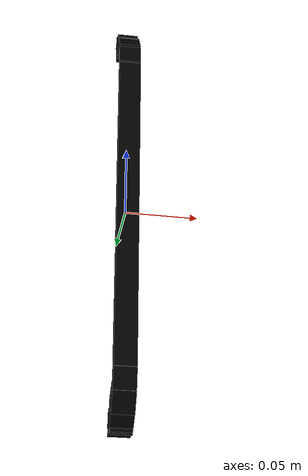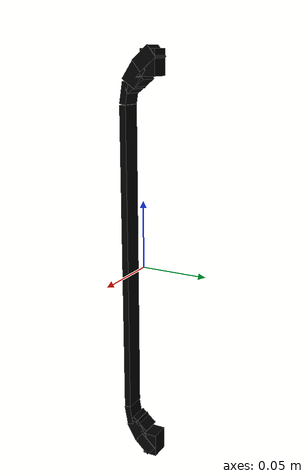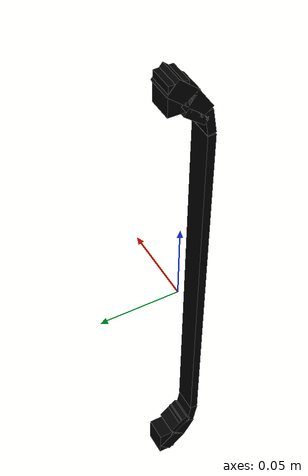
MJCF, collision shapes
<?xml version="1.0" ?>
<mujoco model="model">
    <compiler angle="radian"/>
    <asset>
        <mesh file="visuals/CabinetHandle020.obj" name="mesh"/>
        <texture file="visuals/T_BC001.png" name="tex" type="2d"/>
        <material name="mat" rgba="1 1 1 1.0" texture="tex" shininess="0.5" specular="0.3103448502657381"/>
    </asset>
    <default>
        <default class="visual">
            <geom conaffinity="0" contype="0" group="1" type="mesh"/>
        </default>
        <default class="collision">
            <geom group="0" rgba="0 0 0 0"/>
        </default>
        <default class="spawn">
            <geom group="0" rgba="0 0 0 0" contype="0" conaffinity="0"/>
            <site group="0" rgba="0 0 0 0"/>
        </default>
    </default>
    <worldbody>
        <body>
            <body name="object">
                <geom mesh="mesh" type="mesh" solimp="0.998 0.998 0.001" solref="0.001 1" density="100" friction="0.95 0.3 0.1" class="visual" material="mat"/>
                <geom class="collision" type="box" pos="2.9699571314267814e-05 -0.01141868531703949 0.0003690794110298157" size="0.007665668614208698 0.0024438342079520226 0.11673655360937119" quat="1.0 0.0 0.0 0.0"/>
                <geom class="collision" type="box" pos="2.9699571314267814e-05 -0.010137566365301609 0.1251724809408188" size="0.007665668614208698 0.0024438342079520226 0.007577591110020876" quat="0.9965392351150513 -0.08312389254570007 -1.8457213534501953e-17 -4.049495183511755e-24"/>
                <geom class="collision" type="box" pos="2.9699571314267814e-05 -0.0024454386439174414 0.13754677772521973" size="0.007665668614208698 0.005768961738795042 0.007577589713037014" quat="0.954327404499054 -0.2987627685070038 -6.633868075178094e-17 4.483387219614584e-24"/>
                <geom class="collision" type="box" pos="2.9699571314267814e-05 0.005477930884808302 0.14771072566509247" size="0.007665668614208698 0.005000699777156115 0.007577590644359589" quat="0.9044032692909241 -0.4266786575317383 -9.474170717646736e-17 3.211558058085586e-24"/>
                <geom class="collision" type="box" pos="2.9699571314267814e-05 0.008170992136001587 0.1452527791261673" size="0.007314454764127731 0.005504649132490158 0.008863759227097034" quat="0.9999792575836182 0.0064422497525811195 1.4304507745158872e-18 5.304307629239004e-25" name="handle_connector"/>
                <geom class="collision" type="box" pos="2.9699571314267814e-05 -0.002254330087453127 0.13155312836170197" size="0.007665668614208698 0.0024438342079520226 0.007577591110020876" quat="0.8987128138542175 -0.43853771686553955 -9.737493408613397e-17 -5.4274943732612805e-24"/>
                <geom class="collision" type="box" pos="2.9699571314267814e-05 -0.010412762872874737 -0.12396690249443054" size="0.007665668614208698 0.0024438342079520226 0.007577591575682163" quat="0.9959761500358582 0.08961896598339081 1.9899409549933057e-17 -3.2601990242862873e-24"/>
                <geom class="collision" type="box" pos="2.9699571314267814e-05 -0.0032710283994674683 -0.13587871193885803" size="0.007665668614208698 0.005768961738795042 0.007577590178698301" quat="0.2573588192462921 -0.9663159251213074 -2.1456523782632683e-16 -3.2052052133044215e-25"/>
                <geom class="collision" type="box" pos="2.9699571314267814e-05 0.004170747008174658 -0.14621691405773163" size="0.007665668614208698 0.005000699777156115 0.007577590178698301" quat="0.4027372896671295 -0.9153156280517578 -2.0324088377756967e-16 1.6746051708710633e-24"/>
                <geom class="collision" type="box" pos="2.9699571314267814e-05 0.008170992136001587 -0.1454082727432251" size="0.007314454764127731 0.005504649132490158 0.008863759227097034" quat="0.9999792575836182 0.0064422497525811195 1.4304507745158872e-18 5.304307629239004e-25"/>
                <geom class="collision" type="box" pos="2.9699571314267814e-05 -0.0018415353260934353 -0.13107088208198547" size="0.007665668614208698 0.0024438342079520226 0.007577591110020876" quat="0.42053529620170593 -0.9072761535644531 -2.0145580154590063e-16 9.049574857562976e-24"/>
            </body>
        </body>
    </worldbody>
    <actuator/>
</mujoco>
